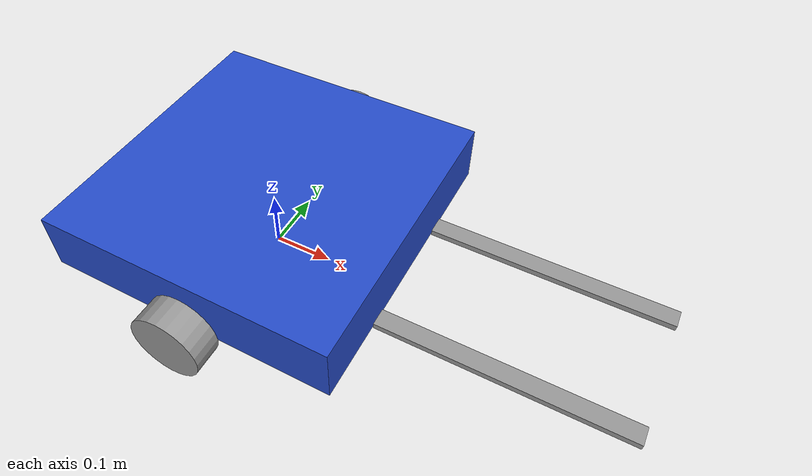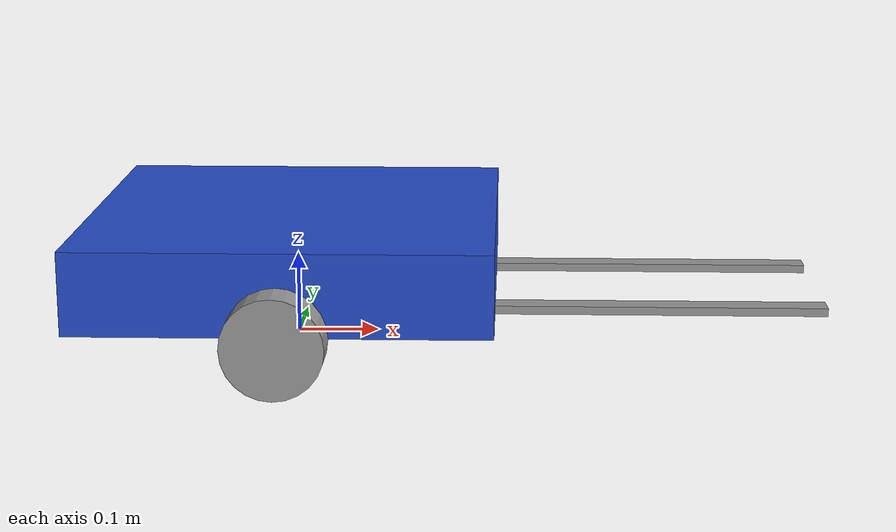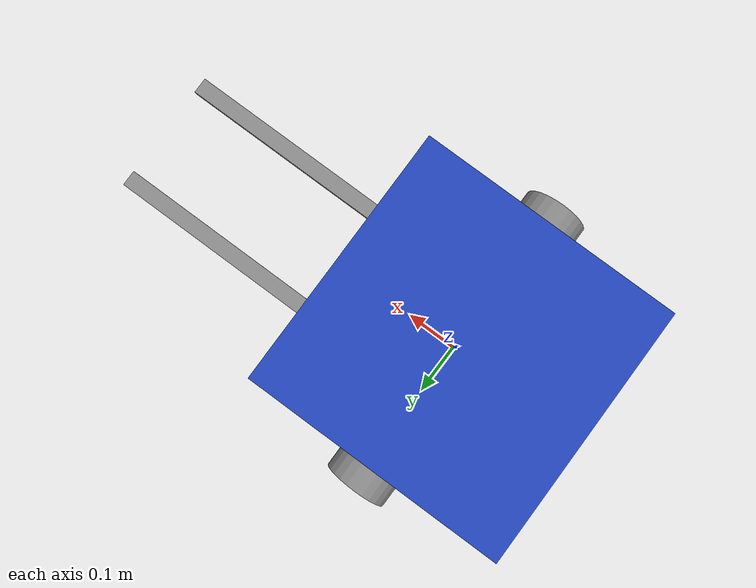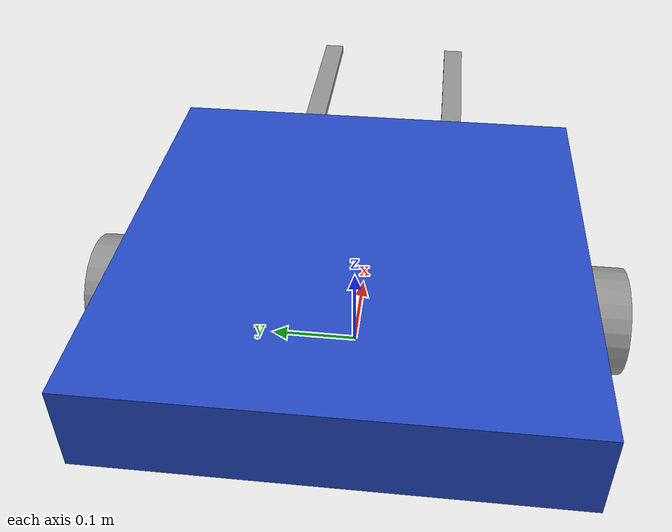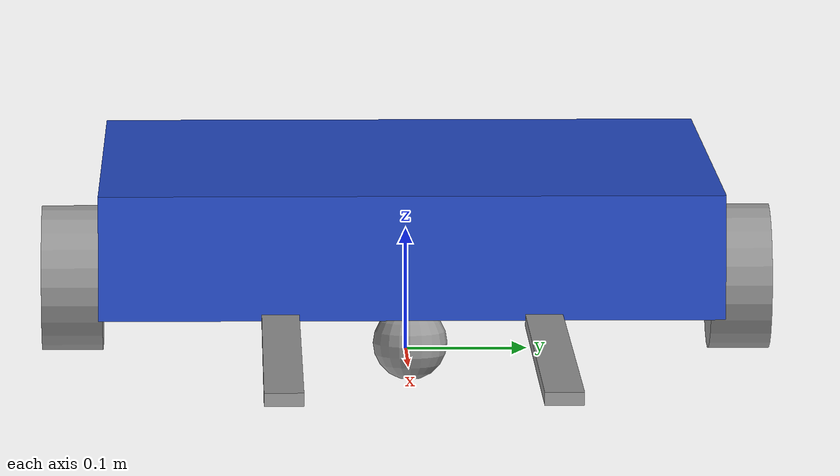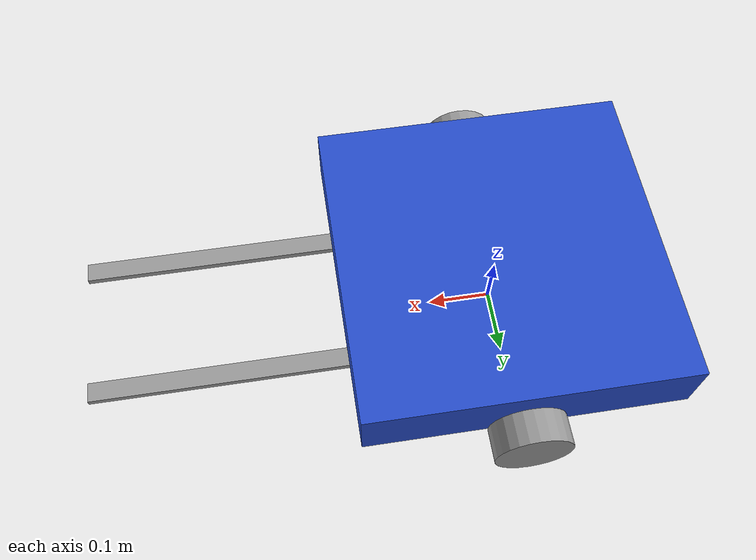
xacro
<?xml version="1.0"?>
<robot xmlns:xacro="http://www.ros.org/wiki/xacro">

    <xacro:property name="base_length" value ="0.5"/>
    <xacro:property name="base_width" value ="0.5"/>
    <xacro:property name="base_height" value ="0.1"/>
    <xacro:property name="wheel_radius" value ="0.06"/>
    <xacro:property name="wheel_length" value ="0.05"/>
    <xacro:property name="fork_length" value ="0.4"/>
    <xacro:property name="fork_width" value ="0.03"/>
    <xacro:property name="fork_height" value ="0.01"/>

    <link name="base_footprint">
        <origin xyz="0 0 0" rpy="0 0 0" />
    </link>

    <link name="base_link">
        <visual>
            <geometry>
                <box size="${base_length} ${base_width} ${base_height}"/>
            </geometry>
            <origin xyz="0 0 ${base_height/2.0}" rpy="0 0 0" />
            <material name="blue"/>
        </visual>
        <collision>
            <geometry>
                <box size="${base_length} ${base_width} ${base_height}"/>
            </geometry>
            <origin xyz="0 0 ${base_height/2.0}" rpy="0 0 0" />
        </collision>
        <xacro:box_inertia  m="2.0" l="${0.5*base_length}" w="${0.5*base_width}" h="${0.5*base_height}"
                            xyz="0 0 ${base_height/2.0}" rpy="0 0 0"/>
    </link>

    <xacro:macro name="wheel_link" params="prefix">
        <link name ="${prefix}_wheel_link">
            <visual>
                <geometry>
                    <cylinder radius="${wheel_radius}" length="${wheel_length}"/>
                </geometry>
                <origin xyz="0 0 0" rpy="${pi/2.0} 0 0" />
                <material name="grey"/>
            </visual>
            <collision>
                <geometry>
                    <cylinder radius="${wheel_radius}" length="${wheel_length}"/>
                </geometry>
                <origin xyz="0 0 0" rpy="${pi/2.0} 0 0" />
            </collision>
            <xacro:cylinder_inertia  m="0.5" r="${2*wheel_radius}" h="${2*wheel_length}"
                                xyz="0 0 0" rpy="${pi/2.0} 0 0"/>
        </link>
    </xacro:macro>

    <xacro:wheel_link prefix="right"/>
    <xacro:wheel_link prefix="left"/>

    <xacro:macro name="caster_wheel_link" params="prefix">
        <link name ="${prefix}_caster_wheel_link">
            <visual>
                <geometry>
                    <sphere radius="${wheel_radius/2.0}" />
                </geometry>
                <origin xyz="0 0 0" rpy="0 0 0" />
                <material name="grey"/>
            </visual>
            <collision>
                <geometry>
                    <sphere radius="${wheel_radius/2.0}" />
                </geometry>
                <origin xyz="0 0 0" rpy="0 0 0" />
            </collision>
            <xacro:sphere_inertia m="0.5" r="${2*wheel_radius/2.0}"
                                xyz="0 0 0" rpy="0 0 0" />
        </link>
    </xacro:macro>

    <xacro:caster_wheel_link prefix="front"/>
    <xacro:caster_wheel_link prefix="back"/>

    <xacro:macro name="fork_link" params="prefix">
        <link name ="${prefix}_fork_link">
            <visual>
                <geometry>
                    <box size="${fork_length} ${fork_width} ${fork_height}"/>
                </geometry>
                <origin xyz="0 0 0" rpy="0 0 0" />
                <material name="grey"/>
            </visual>
            <collision>
                <geometry>
                    <box size="0.4 0.03 0.01"/>
                </geometry>
                <origin xyz="0 0 0" rpy="0 0 0" />
            </collision>
            <xacro:box_inertia  m="0.01" l="${0.5*fork_length}" w="${0.5*fork_width}" h="${0.5*fork_height}"
                                xyz="0 0 ${fork_height/2.0}" rpy="0 0 0"/>
        </link>
    </xacro:macro>

    <xacro:fork_link prefix="left"/>
    <xacro:fork_link prefix="right"/>

    <joint name="base_joint" type="fixed">
        <parent link="base_footprint"/>
        <child link="base_link"/>
        <origin xyz="0 0 ${wheel_radius}" rpy="0 0 0" />
    </joint>

    <joint name="base_right_wheel_joint" type="continuous">
        <parent link="base_link"/>
        <child link="right_wheel_link"/>
        <origin xyz="0 ${(-base_width/2.0)-(wheel_length/2.0)} 0" rpy="0 0 0" />
        <axis xyz="0 1 0"/>
    </joint>

    <joint name="base_left_wheel_joint" type="continuous">
        <parent link="base_link"/>
        <child link="left_wheel_link"/>
        <origin xyz="0 ${(base_width/2.0)+(wheel_length/2.0)} 0" rpy="0 0 0" />
        <axis xyz="0 1 0"/>
    </joint>

    <joint name="base_front_caster_wheel_joint" type="fixed">
        <parent link="base_link"/>
        <child link="front_caster_wheel_link"/>
        <origin xyz="${base_length / 3.0} 0 ${-wheel_radius/2.0}" rpy="0 0 0" />
    </joint>

    <joint name="base_back_caster_wheel_joint" type="fixed">
        <parent link="base_link"/>
        <child link="back_caster_wheel_link"/>
        <origin xyz="${-base_length / 3.0} 0 ${-wheel_radius/2.0}" rpy="0 0 0" />
    </joint>

    <joint name="base_left_fork_joint" type="fixed">
        <parent link="base_link"/>
        <child link="left_fork_link"/>
        <origin xyz="${(base_length/2.0)+0.2} ${(base_width/4.0)-0.02} 0" rpy="0 0 0" />
    </joint>

    <joint name="base_right_fork_joint" type="fixed">
        <parent link="base_link"/>
        <child link="right_fork_link"/>
        <origin xyz="${(base_length/2.0)+0.2} ${(-base_width/4.0)+0.02} 0" rpy="0 0 0" />
    </joint>

</robot>
